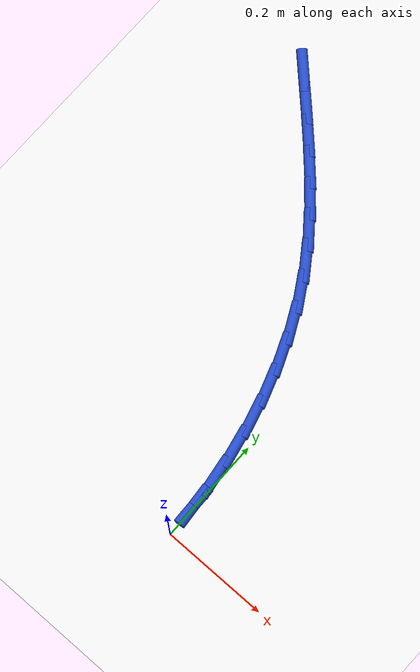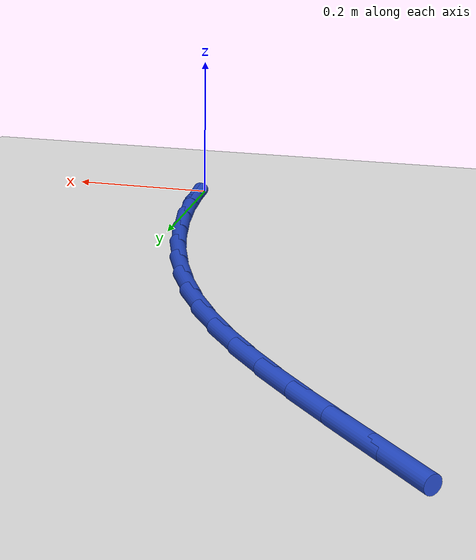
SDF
<sdf version="1.6">
 <world name="default">
  <model name="ground_plane">
   <static>1</static>
   <link name="link">
    <collision name="collision">
     <geometry><plane><normal>0 0 1</normal><size>100 100</size></plane></geometry>
     <surface><friction><ode><mu>100</mu><mu2>50</mu2></ode></friction></surface>
    </collision>
    <visual name="visual">
     <cast_shadows>0</cast_shadows>
     <geometry><plane><normal>0 0 1</normal><size>100 100</size></plane></geometry>
     <material>
      <script><uri>file://media/materials/scripts/gazebo.material</uri><name>Gazebo/WhiteGlow</name></script>
     </material>
    </visual>
   </link>
  </model>
  <model name="line">
   <link name="link_1">
    <pose>-0.00212208975030685 0.061803881448125854 0.01 0 1.57 -1.4802142343805424</pose>
    <collision name="collision">
     <geometry><cylinder><radius>0.01</radius><length>0.08</length></cylinder></geometry>
    </collision>
    <visual name="visual">
     <material>
      <script><name>Gazebo/Blue</name><uri>file://media/materials/scripts/gazebo.material</uri></script>
     </material>
     <geometry><cylinder><radius>0.01</radius><length>0.08</length></cylinder></geometry>
    </visual>
   </link>
   <link name="link_2">
    <pose>-0.007705369023403609 0.12327298953978562 0.01 0 1.57 -1.4231321398056624</pose>
    <collision name="collision">
     <geometry><cylinder><radius>0.01</radius><length>0.08</length></cylinder></geometry>
    </collision>
    <visual name="visual">
     <material>
      <script><name>Gazebo/Blue</name><uri>file://media/materials/scripts/gazebo.material</uri></script>
     </material>
     <geometry><cylinder><radius>0.01</radius><length>0.08</length></cylinder></geometry>
    </visual>
   </link>
   <link name="link_3">
    <pose>-0.0167389544190258 0.18400424532298998 0.01 0 1.57 -1.364462551676888</pose>
    <collision name="collision">
     <geometry><cylinder><radius>0.01</radius><length>0.08</length></cylinder></geometry>
    </collision>
    <visual name="visual">
     <material>
      <script><name>Gazebo/Blue</name><uri>file://media/materials/scripts/gazebo.material</uri></script>
     </material>
     <geometry><cylinder><radius>0.01</radius><length>0.08</length></cylinder></geometry>
    </visual>
   </link>
   <link name="link_4">
    <pose>-0.029211962536908942 0.24359456984574934 0.01 0 1.57 -1.3034104061969203</pose>
    <collision name="collision">
     <geometry><cylinder><radius>0.01</radius><length>0.08</length></cylinder></geometry>
    </collision>
    <visual name="visual">
     <material>
      <script><name>Gazebo/Blue</name><uri>file://media/materials/scripts/gazebo.material</uri></script>
     </material>
     <geometry><cylinder><radius>0.01</radius><length>0.08</length></cylinder></geometry>
    </visual>
   </link>
   <link name="link_5">
    <pose>-0.04511350997678853 0.3016408841560742 0.01 0 1.57 -1.239140884431747</pose>
    <collision name="collision">
     <geometry><cylinder><radius>0.01</radius><length>0.08</length></cylinder></geometry>
    </collision>
    <visual name="visual">
     <material>
      <script><name>Gazebo/Blue</name><uri>file://media/materials/scripts/gazebo.material</uri></script>
     </material>
     <geometry><cylinder><radius>0.01</radius><length>0.08</length></cylinder></geometry>
    </visual>
   </link>
   <link name="link_6">
    <pose>-0.06443271333840009 0.3577401093019751 0.01 0 1.57 -1.1707767701756129</pose>
    <collision name="collision">
     <geometry><cylinder><radius>0.01</radius><length>0.08</length></cylinder></geometry>
    </collision>
    <visual name="visual">
     <material>
      <script><name>Gazebo/Blue</name><uri>file://media/materials/scripts/gazebo.material</uri></script>
     </material>
     <geometry><cylinder><radius>0.01</radius><length>0.08</length></cylinder></geometry>
    </visual>
   </link>
   <link name="link_7">
    <pose>-0.08715868922147914 0.41148916633146254 0.01 0 1.57 -1.0974082866282446</pose>
    <collision name="collision">
     <geometry><cylinder><radius>0.01</radius><length>0.08</length></cylinder></geometry>
    </collision>
    <visual name="visual">
     <material>
      <script><name>Gazebo/Blue</name><uri>file://media/materials/scripts/gazebo.material</uri></script>
     </material>
     <geometry><cylinder><radius>0.01</radius><length>0.08</length></cylinder></geometry>
    </visual>
   </link>
   <link name="link_8">
    <pose>-0.1132805542257612 0.46248497629254715 0.01 0 1.57 -1.020185421236158</pose>
    <collision name="collision">
     <geometry><cylinder><radius>0.01</radius><length>0.08</length></cylinder></geometry>
    </collision>
    <visual name="visual">
     <material>
      <script><name>Gazebo/Blue</name><uri>file://media/materials/scripts/gazebo.material</uri></script>
     </material>
     <geometry><cylinder><radius>0.01</radius><length>0.08</length></cylinder></geometry>
    </visual>
   </link>
   <link name="link_9">
    <pose>-0.14274790596804154 0.5104816214095035 0.01 0 1.57 -0.9490711023411567</pose>
    <collision name="collision">
     <geometry><cylinder><radius>0.01</radius><length>0.08</length></cylinder></geometry>
    </collision>
    <visual name="visual">
     <material>
      <script><name>Gazebo/Blue</name><uri>file://media/materials/scripts/gazebo.material</uri></script>
     </material>
     <geometry><cylinder><radius>0.01</radius><length>0.08</length></cylinder></geometry>
    </visual>
   </link>
   <link name="link_10">
    <pose>-0.17532922866278228 0.5559534452400261 0.01 0 1.57 -0.8889696397248699</pose>
    <collision name="collision">
     <geometry><cylinder><radius>0.01</radius><length>0.08</length></cylinder></geometry>
    </collision>
    <visual name="visual">
     <material>
      <script><name>Gazebo/Blue</name><uri>file://media/materials/scripts/gazebo.material</uri></script>
     </material>
     <geometry><cylinder><radius>0.01</radius><length>0.08</length></cylinder></geometry>
    </visual>
   </link>
   <link name="link_11">
    <pose>-0.21074115342557428 0.5995810034810212 0.01 0 1.57 -0.8413524070460601</pose>
    <collision name="collision">
     <geometry><cylinder><radius>0.01</radius><length>0.08</length></cylinder></geometry>
    </collision>
    <visual name="visual">
     <material>
      <script><name>Gazebo/Blue</name><uri>file://media/materials/scripts/gazebo.material</uri></script>
     </material>
     <geometry><cylinder><radius>0.01</radius><length>0.08</length></cylinder></geometry>
    </visual>
   </link>
   <link name="link_12">
    <pose>-0.2487003071515078 0.6420448686137039 0.01 0 1.57 -0.8067775654078879</pose>
    <collision name="collision">
     <geometry><cylinder><radius>0.01</radius><length>0.08</length></cylinder></geometry>
    </collision>
    <visual name="visual">
     <material>
      <script><name>Gazebo/Blue</name><uri>file://media/materials/scripts/gazebo.material</uri></script>
     </material>
     <geometry><cylinder><radius>0.01</radius><length>0.08</length></cylinder></geometry>
    </visual>
   </link>
   <link name="link_13">
    <pose>-0.28892331673567284 0.6840256131192893 0.01 0 1.57 -0.7850983829899266</pose>
    <collision name="collision">
     <geometry><cylinder><radius>0.01</radius><length>0.08</length></cylinder></geometry>
    </collision>
    <visual name="visual">
     <material>
      <script><name>Gazebo/Blue</name><uri>file://media/materials/scripts/gazebo.material</uri></script>
     </material>
     <geometry><cylinder><radius>0.01</radius><length>0.08</length></cylinder></geometry>
    </visual>
   </link>
   <link name="link_14">
    <pose>-0.33112680907315983 0.7262038094789935 0.01 0 1.57 -0.7756881173404855</pose>
    <collision name="collision">
     <geometry><cylinder><radius>0.01</radius><length>0.08</length></cylinder></geometry>
    </collision>
    <visual name="visual">
     <material>
      <script><name>Gazebo/Blue</name><uri>file://media/materials/scripts/gazebo.material</uri></script>
     </material>
     <geometry><cylinder><radius>0.01</radius><length>0.08</length></cylinder></geometry>
    </visual>
   </link>
   <link name="link_15">
    <pose>-0.3750274110590588 0.7692600301740316 0.01 0 1.57 -0.7776197415746716</pose>
    <collision name="collision">
     <geometry><cylinder><radius>0.01</radius><length>0.08</length></cylinder></geometry>
    </collision>
    <visual name="visual">
     <material>
      <script><name>Gazebo/Blue</name><uri>file://media/materials/scripts/gazebo.material</uri></script>
     </material>
     <geometry><cylinder><radius>0.01</radius><length>0.08</length></cylinder></geometry>
    </visual>
   </link>
   <link name="link_131">
    <pose>-0.0021137327987698212 0.061812371576988843 0.01 0 1.57 -1.5366136961102548</pose>
    <collision name="collision">
     <geometry><cylinder><radius>0.01</radius><length>0.08</length></cylinder></geometry>
    </collision>
    <visual name="visual">
     <material>
      <script><name>Gazebo/Blue</name><uri>file://media/materials/scripts/gazebo.material</uri></script>
     </material>
     <geometry><cylinder><radius>0.01</radius><length>0.08</length></cylinder></geometry>
    </visual>
   </link>
  </model>
 </world>
</sdf>
